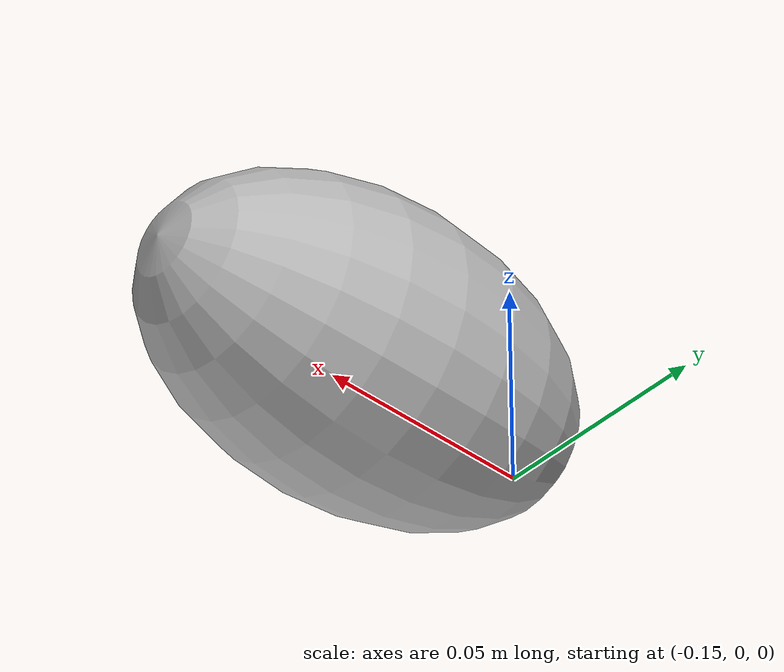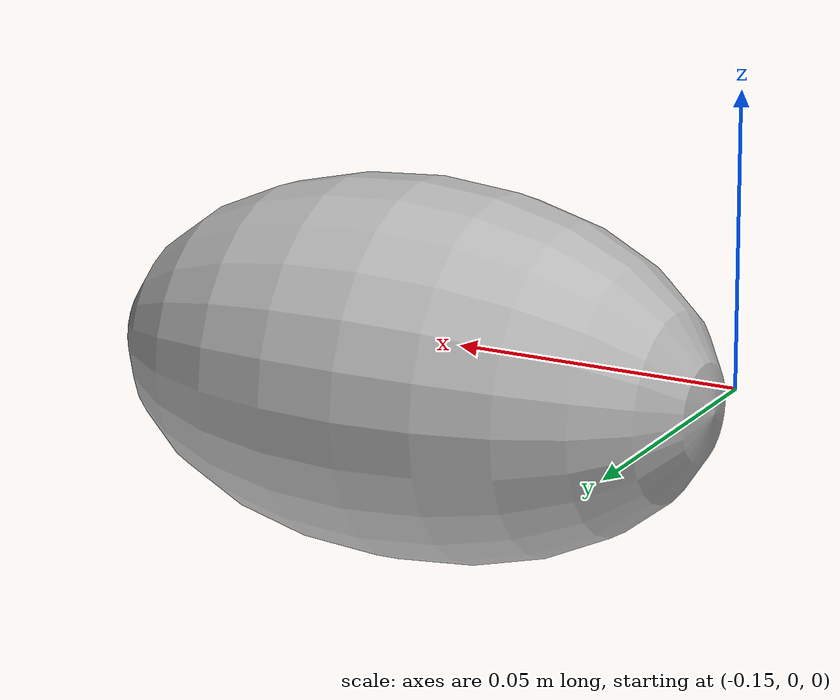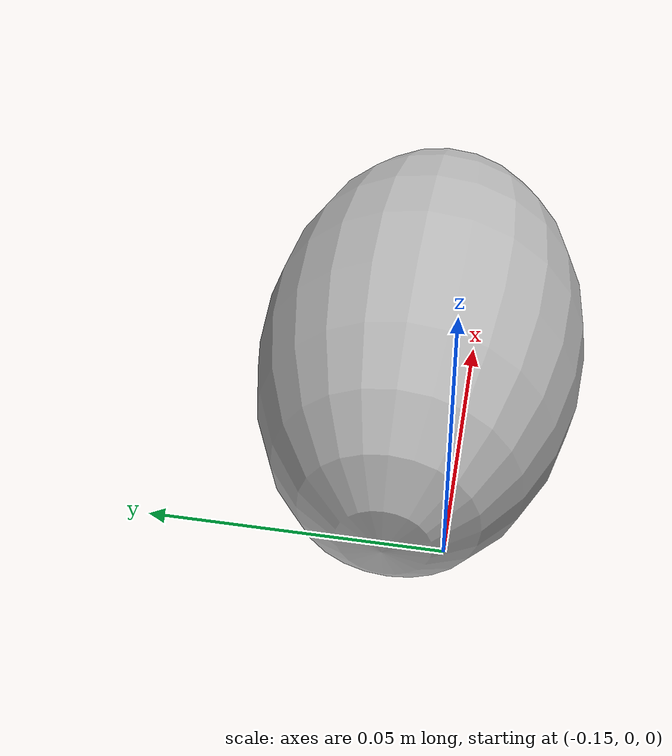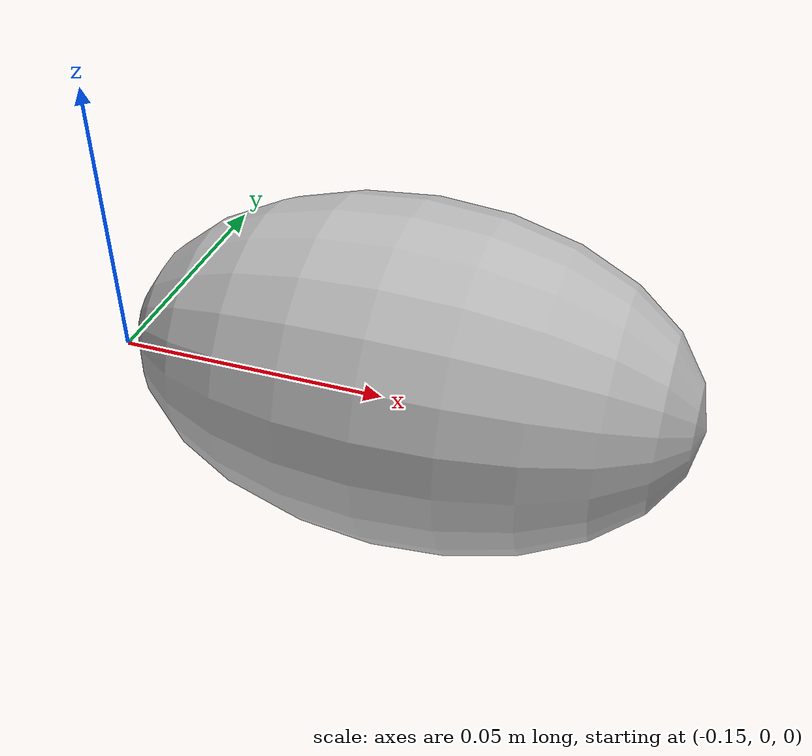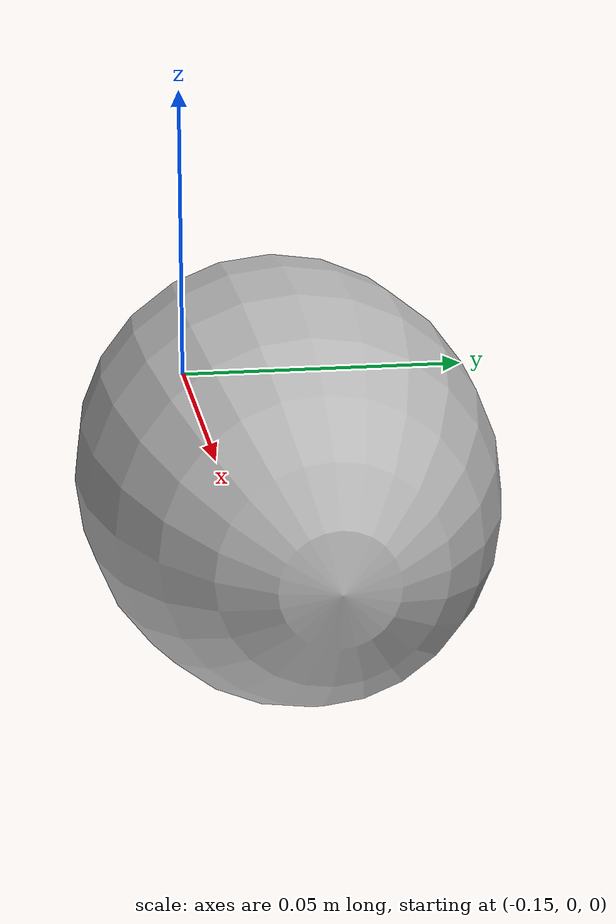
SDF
<?xml version="1.0" ?>
<sdf version="1.5">
  <model name="egg">
    <static>true</static>
    <link name="link">

      <collision name="collision">
        <geometry>
          <mesh>
            <uri>model://egg/meshes/egg.STL</uri>
            <scale>0.06 0.06 0.06</scale>
          </mesh>
        </geometry>
        <surface>
          <friction>
            <ode>
              <mu>10000</mu>
              <mu2>10000</mu2>
            </ode>
          </friction>
        </surface>
      </collision>

      <visual name="visual">
        <geometry>
          <mesh>
            <uri>model://egg/meshes/egg.STL</uri>
            <scale>0.06 0.06 0.06</scale>
          </mesh>
        </geometry>
      </visual>
    </link>
  </model>
</sdf>
